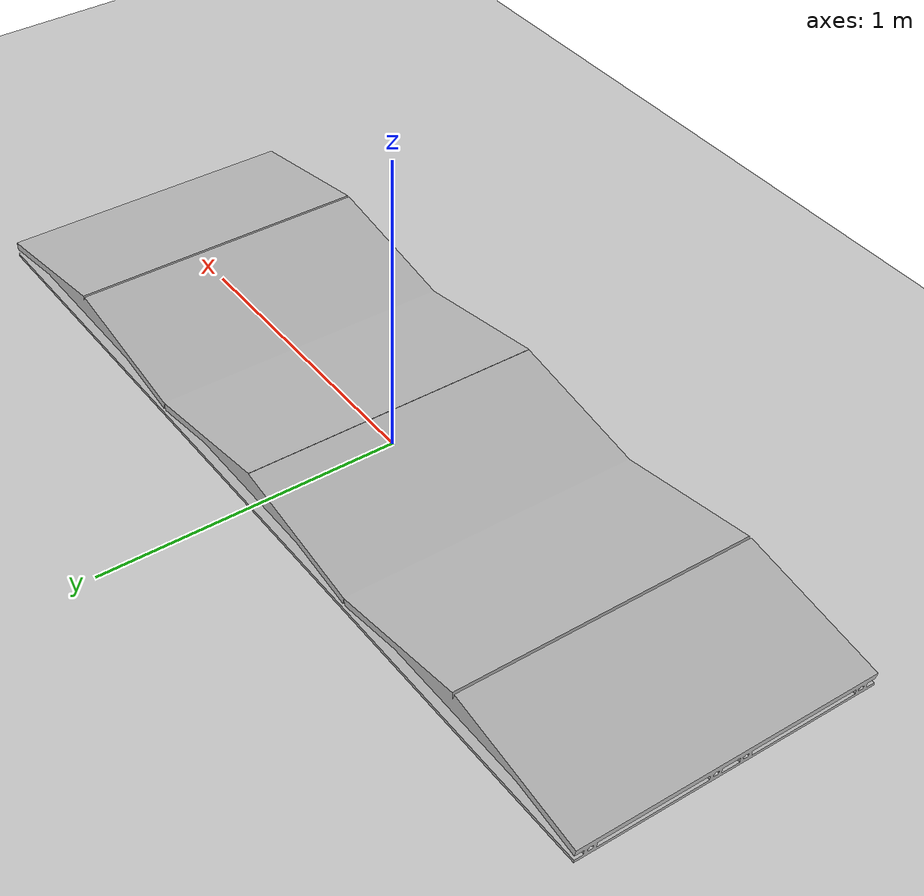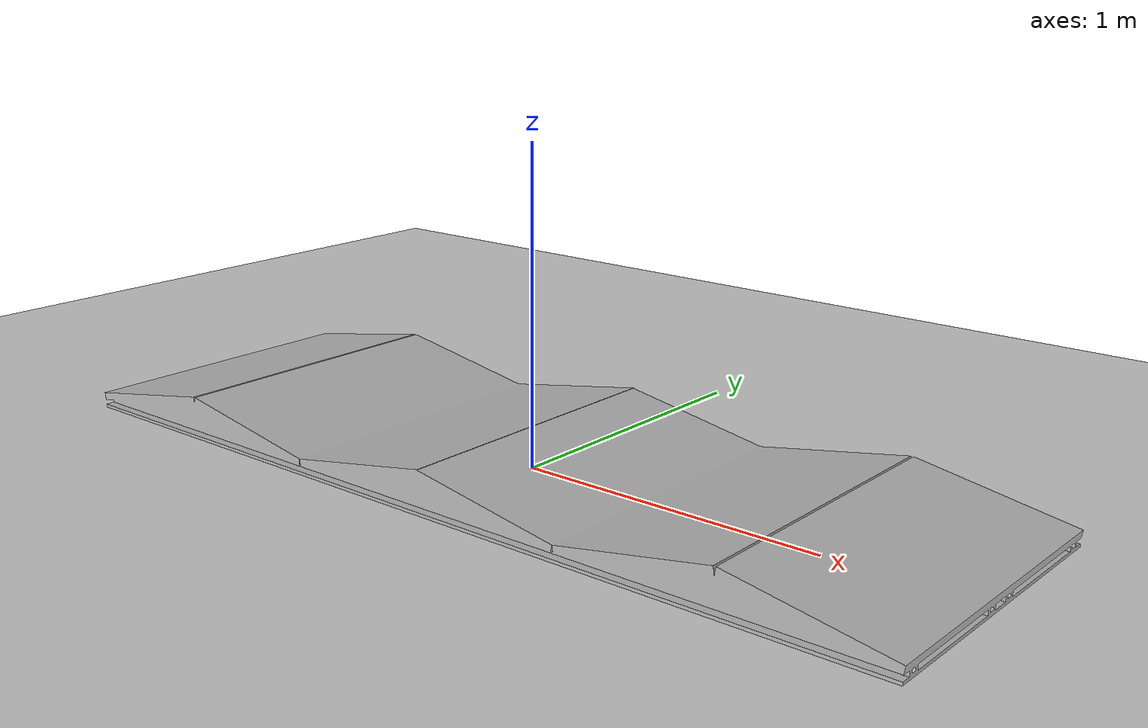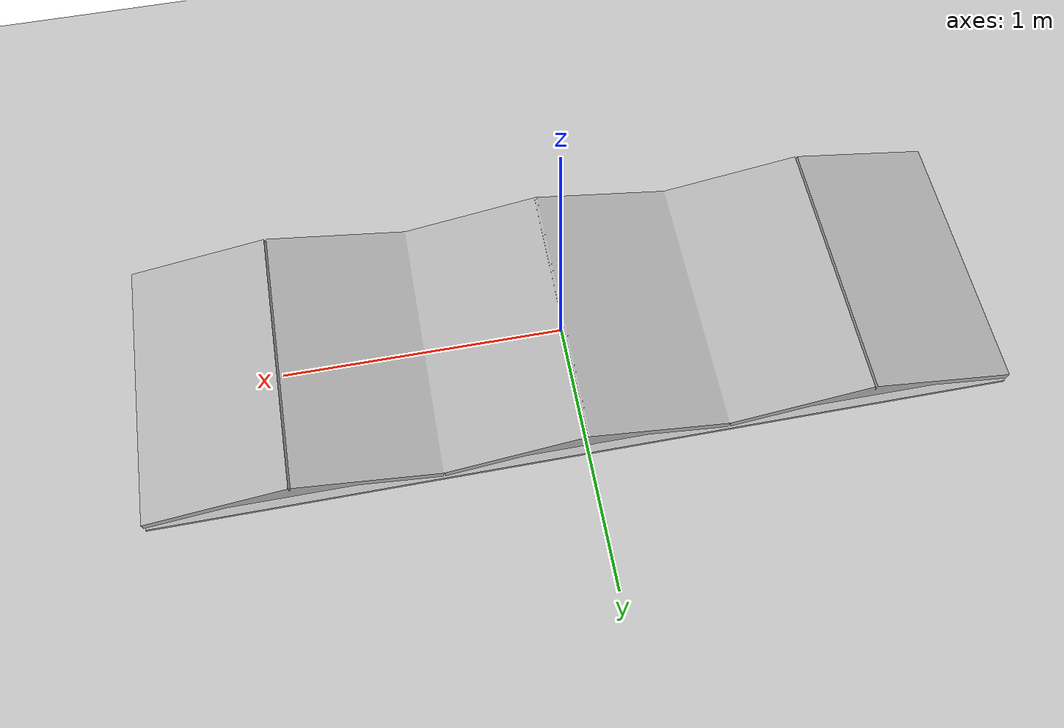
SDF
<?xml version="1.0" ?>
<sdf version="1.4">
  <world name="default">
    <physics type="ode">
      <gravity>0 0 -9.81</gravity>
      <ode>
        <solver>
          <type>quick</type>
          <iters>50</iters>
          <sor>1.4</sor>
        </solver>
        <constraints>
          <cfm>0.0</cfm>
          <erp>0.0</erp>
          <contact_max_correcting_vel>100.0</contact_max_correcting_vel>
          <contact_surface_layer>0.0</contact_surface_layer>
        </constraints>
      </ode>
      <real_time_update_rate>1000</real_time_update_rate>
      <max_step_size>0.001</max_step_size>
    </physics>
    <!-- A global light source -->
    <include>
      <uri>model://sun</uri>
    </include>
    <!-- A ground plane -->
    <include>
      <uri>model://ground_plane</uri>
    </include>

    <include>
      <uri>model://ramps</uri>
          <pose>0.0 0.0 0.0 0.0 0.0 0.0</pose>
    </include>

  </world>
</sdf>

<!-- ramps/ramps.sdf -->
<sdf version="1.5">
<model name="ramps">
  <!-- Give the base link a unique name -->
  <link name="base">
    <pose>0 0 0 0 0 0</pose>
    <inertial>
      <pose>0 0 0 0 0 0</pose>
      <mass>83</mass>
      <inertia>
        <ixx>7.6</ixx>
        <ixy>0</ixy>
        <ixz>0</ixz>
        <iyy>62.1</iyy>
        <iyz>0</iyz>
        <izz>69.5</izz>
      </inertia>
    </inertial>
    <collision name="base_collision">
      <geometry>
        <mesh>
          <uri>model://ramps/meshes/ramps.stl</uri>
          <scale>1 1 1</scale>
        </mesh>
      </geometry>
    </collision>

    <!-- The visual is mostly a copy of the collision -->
    <visual name="base_visual">
      <!-- Offset the visual by have the base's height. We are not rotating
           mesh since symmetrical -->
      <geometry>
        <mesh>
              <uri>model://ramps/meshes/ramps.stl</uri>
        <scale>1 1 1</scale>
        </mesh>
      </geometry>
    </visual>
  </link>

</model>
</sdf>
